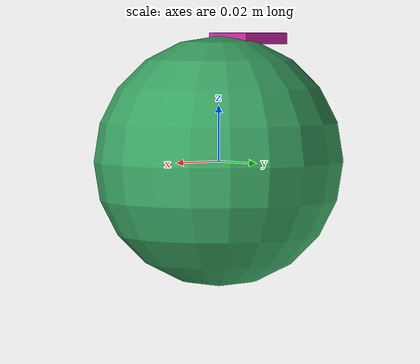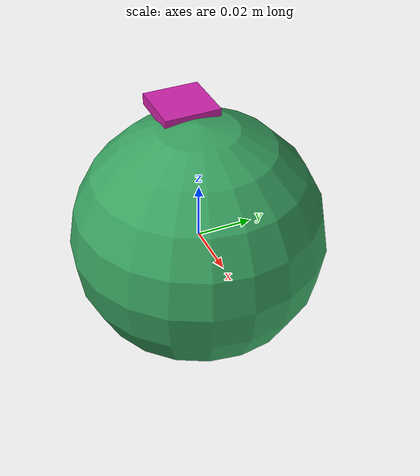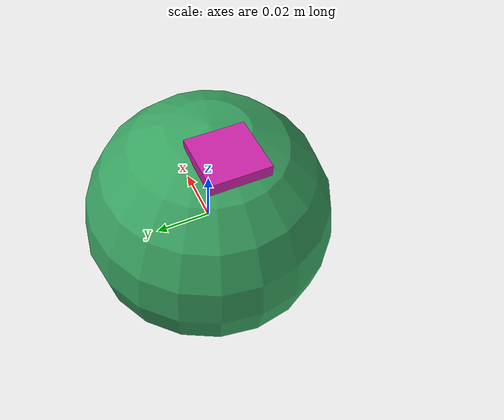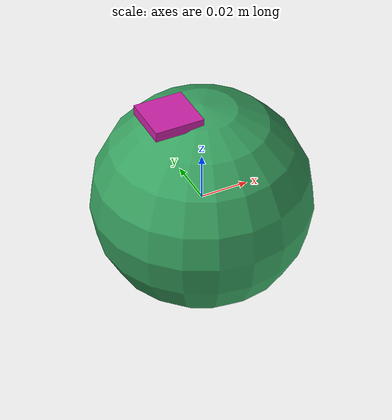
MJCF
<?xml version="1.0" encoding="UTF-8"?>
<!-- Shared mesh surrogate with an ordinary visual instance marker. -->
<mujoco model="libero_vlabench_perception_instance_primitive">
  <worldbody>
    <body>
      <body name="object">
        <geom name="instance_visual" type="sphere" group="1" contype="0" conaffinity="0"
              size="0.045" rgba="0.22 0.64 0.38 1"/>
        <geom name="instance_mark" type="box" group="1" contype="0" conaffinity="0"
              pos="-0.014 0 0.044" size="0.010 0.010 0.002" rgba="0.80 0.14 0.66 1"/>
        <geom name="instance_collision" type="sphere" group="0" size="0.043"
              mass="0.08"/>
      </body>
      <site name="bottom_site" pos="0 0 -0.045" size="0.005" rgba="0 0 0 0"/>
      <site name="top_site" pos="0 0 0.045" size="0.005" rgba="0 0 0 0"/>
      <site name="horizontal_radius_site" pos="0.045 0 0" size="0.005" rgba="0 0 0 0"/>
    </body>
  </worldbody>
</mujoco>
